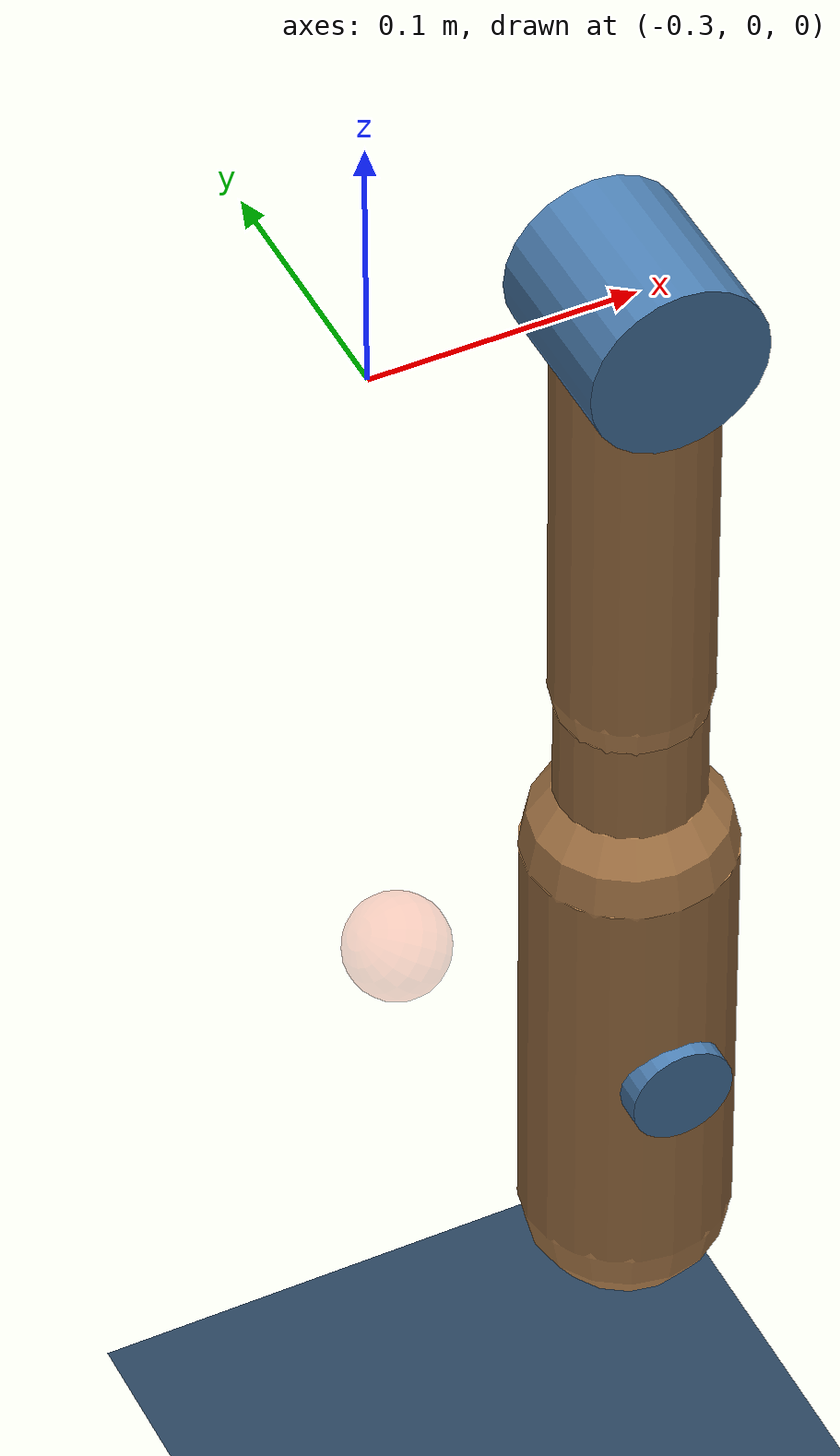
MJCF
<mujoco model="finger">

    <visual>
        <headlight ambient=".4 .4 .4" diffuse=".8 .8 .8" specular="0.1 0.1 0.1"/>
        <map znear=".01"/>
        <quality shadowsize="2048"/>
    </visual>

    <asset>
        <texture name="skybox" type="skybox" builtin="gradient" rgb1=".4 .6 .8" rgb2="0 0 0"
                 width="800" height="800" mark="random" markrgb="1 1 1"/>
    </asset>

    <asset>
        <texture name="grid" type="2d" builtin="checker" rgb1=".1 .2 .3" rgb2=".2 .3 .4" width="300" height="300" mark="edge" markrgb=".2 .3 .4"/>
        <material name="grid" texture="grid" texrepeat="1 1" texuniform="true" reflectance=".2"/>
        <material name="self" rgba=".7 .5 .3 1"/>
        <material name="self_default" rgba=".7 .5 .3 1"/>
        <material name="self_highlight" rgba="0 .5 .3 1"/>
        <material name="effector" rgba=".7 .4 .2 1"/>
        <material name="effector_default" rgba=".7 .4 .2 1"/>
        <material name="effector_highlight" rgba="0 .5 .3 1"/>
        <material name="decoration" rgba=".3 .5 .7 1"/>
        <material name="eye" rgba="0 .2 1 1"/>
        <material name="target" rgba=".6 .3 .3 1"/>
        <material name="target_default" rgba=".6 .3 .3 1"/>
        <material name="target_highlight" rgba=".6 .3 .3 .4"/>
    </asset>

<!--   important mjx options  -->
  <option timestep="0.0075" impratio="10" iterations="100" ls_iterations="4">
    <flag eulerdamp="disable"/>
  </option>

<!--  reduce contact computation for mjx -->
 <custom>
    <numeric data="15" name="max_contact_points"/>
    <numeric data="15" name="max_geom_pairs"/>
  </custom>

    <default>
        <geom solimp="0 0.99 0.1" solref="0.02 1"/>
        <joint type="hinge" axis="0 -1 0"/>
        <motor ctrllimited="true" ctrlrange="-1 1"/>
        <default class="finger">
            <site type="ellipsoid" size=".025 .03 .025" rgba=".5 .5 .5 .3" group="3"/>
        </default>
    </default>

    <worldbody>
        <light name="light" directional="true" diffuse=".6 .6 .6" pos="0 0 2" specular=".3 .3 .3"/>
        <geom name="ground" type="plane" pos="0 0 -0.6" size=".6 .2 10" material="grid"/>
        <camera name="cam0" pos="0 -1 .8" xyaxes="1 0 0 0 1 2"/>
        <camera name="cam1" pos="0 -1 .4" xyaxes="1 0 0 0 0 1" />

        <body name="proximal" pos="-.2 0 -0.01" childclass="finger">
            <joint name="proximal" range="-150 -80" ref="-90" damping="0.05" limited="false" />
            <geom name="proximal" type="capsule" material="self" size=".03" fromto="0 0 0 0 0 -.17" contype="1" conaffinity="1"/>
            <body name="distal" pos="0 0 -.18" childclass="finger">
                <joint name="distal" range="-50 50" damping="0.05" limited="false"/>
                <geom name="distal" type="capsule" size=".028" material="self" fromto="0 0 0 0 0 -.16" contype="1" conaffinity="1"/>
                <!-- Decoration -->
                <geom name="fingertip" type="capsule" size=".03" material="effector" fromto="0 0 -.13 0 0 -.161" contype="0" conaffinity="0"/>
            </body>
            <!-- Decoration -->
            <geom name="proximal_decoration" type="cylinder" fromto="0 -.033 0 0 .033 0" size=".034" material="decoration" contype="0" conaffinity="0"/>
        </body>

        <body name="spinner" pos="-.2 0 -.35">
            <joint name="hinge" range="-50 50" frictionloss=".01" damping=".2" limited="false"/>
            <geom name="spinner" type="capsule" size=".04 .09" material="self" pos="0. 0 0" contype="1" conaffinity="1"/>
            <!-- Decoration -->
            <geom name="spinner_decoration" type="cylinder" fromto="0 -.045 0 0 .045 0" size=".02" material="decoration" contype="0" conaffinity="0"/>
            <geom name="target" pos="0. 0. 0.12" type="sphere" size="0.02" rgba=".3 .5 .7 0.25" contype="0" conaffinity="0"/>
        </body>

        <body mocap="true" name="target" pos="-.2 0 -.35" quat="0 -0.4226183 0 0.9063078">
            <!-- A joint for tracking angular displacement -->
            <geom name="target_decoration" pos="0. 0. 0.12" type="sphere" size="0.02" rgba="0.961 0.294 0.145 0.25" contype="0" conaffinity="0"/>
        </body>

    </worldbody>

    <default>
        <default class="position">
        <position kp="2" ctrllimited="true" forcelimited="true" forcerange="-10.5 10.5"  ctrlrange="-6. 6."/>
        </default>
    </default>

    <actuator>
        <position class="position" name="proximal" joint="proximal"  />
        <position class="position" name="distal" joint="distal" />
    </actuator>
</mujoco>
